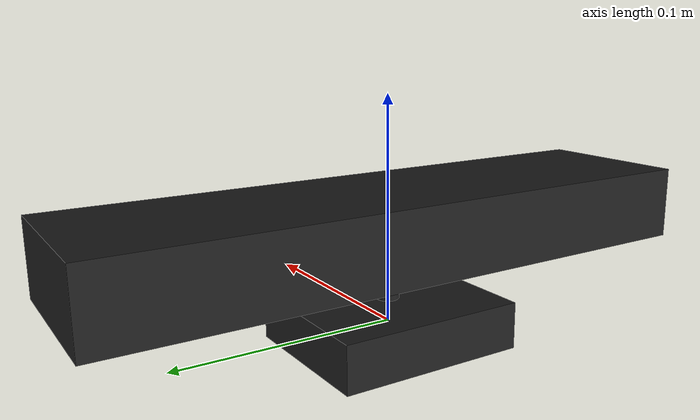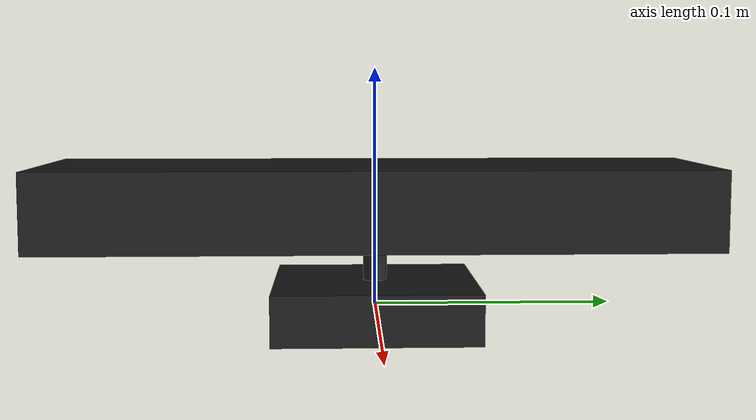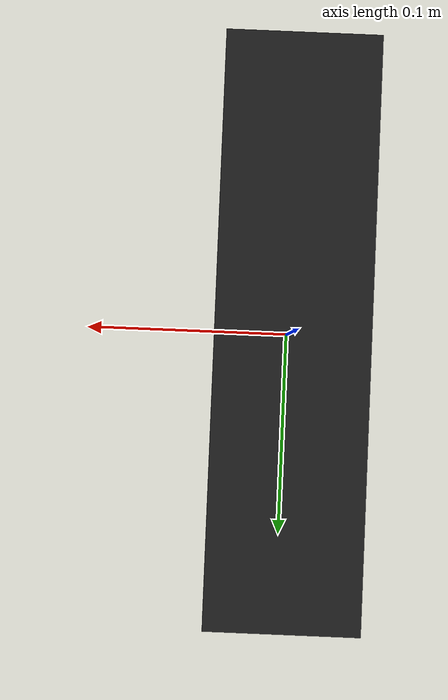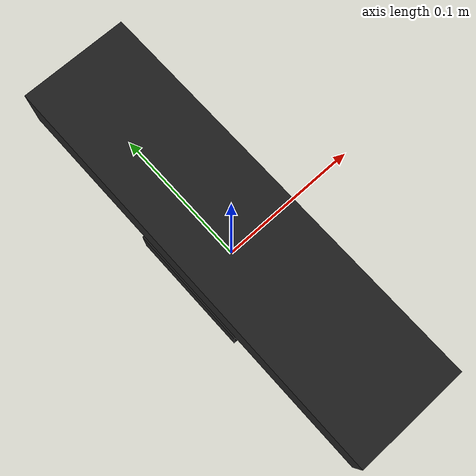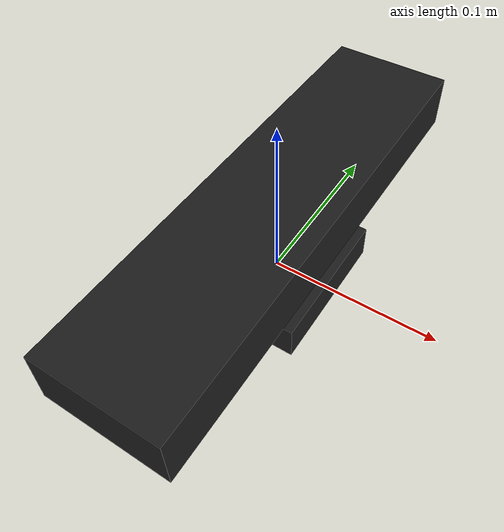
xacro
<?xml version="1.0"?>

<robot xmlns:xacro="http://ros.org/wiki/xacro"
       name="kinect" >

<property name="PI" value="3.14159265"/>

  <!-- define the link -->
  <link name="camera_base_link">
    <visual>
      <origin xyz="0 0.0 0.0" rpy="0 0 0" />
        <geometry>
          <box size="0.072 0.085 0.021"/>
        </geometry>
          <material name="Black" />
    </visual>
      <collision>
        <origin xyz="0 0 0" rpy="0 0 0" />
          <geometry>
            <box size="0.072 0.085 0.021"/>
          </geometry>
      </collision>
  </link>

  <link name="camera_base_post_link">
    <visual>
      <origin xyz="0 0 0" rpy="0 0 0" />
      <geometry>
        <cylinder radius="0.005" length="0.016"/>
      </geometry>
      <material name="Black" />
    </visual>
      <collision>
        <origin xyz="0 0 0" rpy="0 0 0" />
        <geometry>
          <cylinder radius="0.005" length="0.016"/>
        </geometry>
      </collision>
  </link>

  <link name="camera_link">
    <visual>
      <origin xyz="0 0 0" rpy="0 0 0" />
      <geometry>
        <box size="0.07271 0.27794 0.033"/>
      </geometry>
        <material name="Black" />
    </visual>
      <collision>
        <origin xyz="0 0 0" rpy="0 0 0" />
        <geometry>
          <box size="0.07271 0.27794 0.033"/>
        </geometry>
      </collision>
  </link>

  <link name="camera_depth_frame">
    <inertial>
      <mass value="0.000001" />
        <origin xyz="0 0 0" />
          <inertia ixx="0.0001" ixy="0.0" ixz="0.0"
            iyy="0.0001" iyz="0.0"
            izz="0.0001" />
    </inertial>
  </link>

  <link name="camera_depth_optical_frame">
    <inertial>
      <mass value="0.000001" />
        <origin xyz="0 0 0" />
          <inertia ixx="0.0001" ixy="0.0" ixz="0.0"
            iyy="0.0001" iyz="0.0"
            izz="0.0001" />
    </inertial>
  </link>

  <link name="camera_rgb_frame">
    <inertial>
      <mass value="0.000001" />
        <origin xyz="0 0 0" />
          <inertia ixx="0.0001" ixy="0.0" ixz="0.0"
            iyy="0.0001" iyz="0.0"
            izz="0.0001" />
    </inertial>
  </link>

  <link name="camera_rgb_optical_frame">
    <inertial>
      <mass value="0.000001" />
        <origin xyz="0 0 0" />
          <inertia ixx="0.0001" ixy="0.0" ixz="0.0"
            iyy="0.0001" iyz="0.0"
            izz="0.0001" />
    </inertial>
  </link>

  <!-- define the joint -->
  <joint name="camera_base_post_joint" type="fixed">
    <origin xyz="0 0 0.0185" rpy="0 0 0" />
    <parent link="camera_base_link" />
    <child link="camera_base_post_link" />
  </joint>

  <joint name="camera_base_joint" type="fixed">
    <origin xyz="0 0 0.0245" rpy="0 0 0" />
    <parent link="camera_base_post_link" />
    <child link="camera_link" />
  </joint>

  <joint name="camera_depth_joint" type="fixed">
    <origin xyz="0 0.0125 0" rpy="0 0 0" />
    <parent link="camera_link" />
    <child link="camera_depth_frame" />
  </joint>

  <joint name="camera_depth_optical_joint" type="fixed">
    <origin xyz="0 0 0" rpy="${-PI/2} 0 ${-PI/2}" />
    <parent link="camera_depth_frame" />
    <child link="camera_depth_optical_frame" />
  </joint>

  <joint name="camera_rgb_joint" type="fixed">
    <origin xyz="0 -0.0125 0" rpy="0 0 0" />
    <parent link="camera_link" />
    <child link="camera_rgb_frame" />
  </joint>

  <joint name="camera_rgb_optical_joint" type="fixed">
    <origin xyz="0 0 0" rpy="${-PI/2} 0 ${-PI/2}" />
    <parent link="camera_rgb_frame" />
    <child link="camera_rgb_optical_frame" />
  </joint>

</robot>
